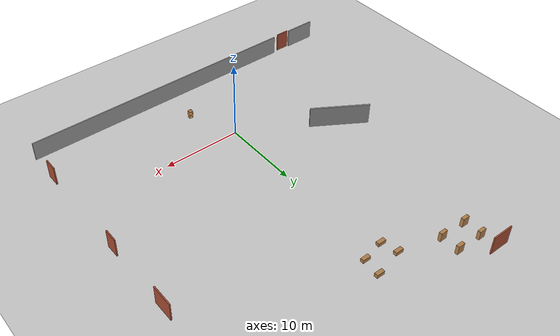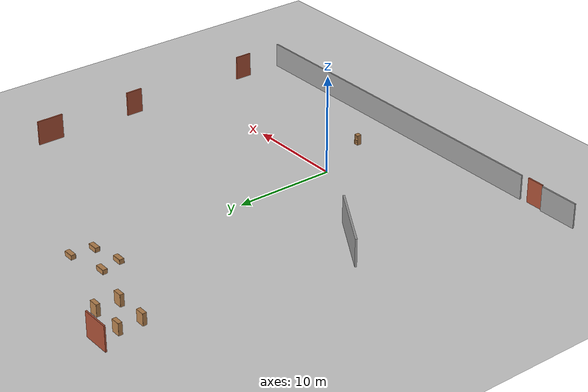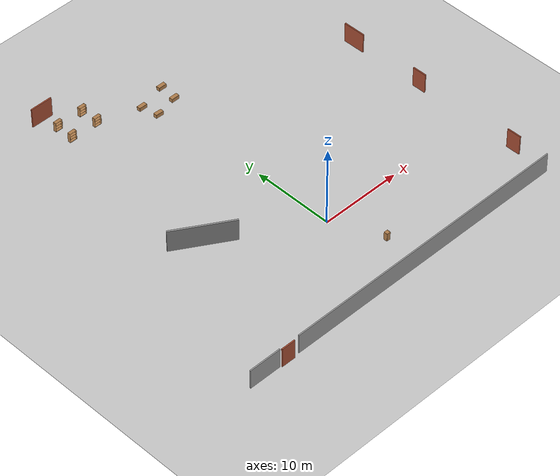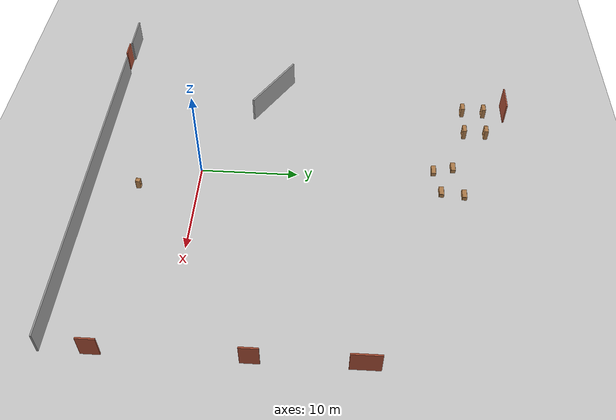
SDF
<sdf version="1.6">
 <world name="default">
  <light name="sun" type="directional">
   <pose>0 0 10 0 -0 0</pose>
   <diffuse>0.8 0.8 0.8 1</diffuse>
   <specular>0.1 0.1 0.1 1</specular>
   <attenuation>
    <range>1000</range>
    <constant>0.9</constant>
    <linear>0.01</linear>
    <quadratic>0.001</quadratic>
   </attenuation>
   <direction>-0.5 0.5 -1</direction>
  </light>
  <model name="ground_plane">
   <static>1</static>
   <link name="link">
    <collision name="collision">
     <geometry><plane><normal>0 0 1</normal><size>100 100</size></plane></geometry>
     <surface><friction><ode><mu>100</mu><mu2>50</mu2></ode></friction></surface>
    </collision>
    <visual name="visual">
     <cast_shadows>0</cast_shadows>
     <geometry><plane><normal>0 0 1</normal><size>100 100</size></plane></geometry>
     <material>
      <script><uri>file://media/materials/scripts/gazebo.material</uri><name>Gazebo/Grey</name></script>
     </material>
    </visual>
   </link>
  </model>
  <gravity>0 0 -9.8</gravity>
  <magnetic_field>6e-06 2.3e-05 -4.2e-05</magnetic_field>
  <atmosphere type="adiabatic"/>
  <physics name="default_physics" default="0" type="ode">
   <max_step_size>0.001</max_step_size>
   <real_time_factor>1</real_time_factor>
   <real_time_update_rate>1000</real_time_update_rate>
  </physics>
  <scene><ambient>0.4 0.4 0.4 1</ambient><background>0.7 0.7 0.7 1</background><shadows>1</shadows></scene>
  <spherical_coordinates>
   <surface_model>EARTH_WGS84</surface_model>
   <latitude_deg>0</latitude_deg>
   <longitude_deg>0</longitude_deg>
   <elevation>0</elevation>
   <heading_deg>0</heading_deg>
  </spherical_coordinates>
  <model name="willowblockwindow">
   <pose>0.08192 -10.749 0 0 -0 0</pose>
   <link name="Wall_13">
    <collision name="Wall_13_Collision">
     <geometry><box><size>36.5 0.15 2.5</size></box></geometry>
     <pose>0 0 1.25 0 -0 0</pose>
    </collision>
    <visual name="Wall_13_Visual">
     <pose>0 0 1.25 0 -0 0</pose>
     <geometry><box><size>36.5 0.15 2.5</size></box></geometry>
     <material>
      <script><uri>file://media/materials/scripts/gazebo.material</uri><name>Gazebo/Grey</name></script>
      <ambient>1 1 1 1</ambient>
     </material>
    </visual>
    <pose>3.29551 0 0 0 -0 0</pose>
   </link>
   <link name="Wall_9">
    <collision name="Wall_9_Collision">
     <geometry><box><size>4 0.15 2.5</size></box></geometry>
     <pose>0 0 1.25 0 -0 0</pose>
    </collision>
    <visual name="Wall_9_Visual">
     <pose>0 0 1.25 0 -0 0</pose>
     <geometry><box><size>4 0.15 2.5</size></box></geometry>
     <material>
      <script><uri>file://media/materials/scripts/gazebo.material</uri><name>Gazebo/Grey</name></script>
      <ambient>1 1 1 1</ambient>
     </material>
    </visual>
    <pose>-19.5455 0 0 0 -0 0</pose>
   </link>
   <static>1</static>
  </model>
  <model name="grey_wall">
   <static>1</static>
   <link name="link">
    <pose>0 0 1.4 0 -0 0</pose>
    <collision name="collision"><geometry><box><size>7.5 0.2 2.8</size></box></geometry></collision>
    <visual name="visual">
     <cast_shadows>0</cast_shadows>
     <geometry><box><size>7.5 0.2 2.8</size></box></geometry>
     <material>
      <script>
       <uri>model://grey_wall/materials/scripts</uri>
       <uri>model://grey_wall/materials/textures</uri>
       <name>vrc/grey_wall</name>
      </script>
     </material>
    </visual>
   </link>
   <pose>-11.2631 6.61663 0 0 -0 2.59196</pose>
  </model>
  <model name="exitblock">
   <pose>-16.4475 -10.9149 0 0 -0 0</pose>
   <link name="Wall_16">
    <collision name="Wall_16_Collision">
     <geometry><box><size>1.75 0.15 2.5</size></box></geometry>
     <pose>0 0 1.25 0 -0 0</pose>
    </collision>
    <visual name="Wall_16_Visual">
     <pose>0 0 1.25 0 -0 0</pose>
     <geometry><box><size>1.75 0.15 2.5</size></box></geometry>
     <material>
      <script><uri>file://media/materials/scripts/gazebo.material</uri><name>Gazebo/Bricks</name></script>
      <ambient>1 1 1 1</ambient>
     </material>
    </visual>
    <pose>0 0 0 0 -0 3.14159</pose>
   </link>
   <static>1</static>
  </model>
  <model name="exitblock_clone">
   <pose>-10.6028 32.0942 0 0 -0 0</pose>
   <link name="Wall_16">
    <collision name="Wall_16_Collision">
     <geometry><box><size>2.75 0.15 2.5</size></box></geometry>
     <pose>0 0 1.25 0 -0 0</pose>
    </collision>
    <visual name="Wall_16_Visual">
     <pose>0 0 1.25 0 -0 0</pose>
     <geometry><box><size>2.75 0.15 2.5</size></box></geometry>
     <material>
      <script><uri>file://media/materials/scripts/gazebo.material</uri><name>Gazebo/Bricks</name></script>
      <ambient>1 1 1 1</ambient>
     </material>
    </visual>
    <pose>0 0 0 0 -0 3.14159</pose>
   </link>
   <static>1</static>
  </model>
  <model name="exitblock_clone_0">
   <pose>21.5489 17.1329 0 0 -0 1.57666</pose>
   <link name="Wall_16">
    <collision name="Wall_16_Collision">
     <geometry><box><size>2.75 0.15 2.5</size></box></geometry>
     <pose>0 0 1.25 0 -0 0</pose>
    </collision>
    <visual name="Wall_16_Visual">
     <pose>0 0 1.25 0 -0 0</pose>
     <geometry><box><size>2.75 0.15 2.5</size></box></geometry>
     <material>
      <script><uri>file://media/materials/scripts/gazebo.material</uri><name>Gazebo/Bricks</name></script>
      <ambient>1 1 1 1</ambient>
     </material>
    </visual>
    <pose>0 0 0 0 -0 3.14159</pose>
   </link>
   <static>1</static>
  </model>
  <model name="exitblock_clone_0_clone">
   <pose>21.5675 7.4089 0 0 -0 1.57668</pose>
   <link name="Wall_16">
    <collision name="Wall_16_Collision">
     <geometry><box><size>1.75 0.15 2.5</size></box></geometry>
     <pose>0 0 1.25 0 -0 0</pose>
    </collision>
    <visual name="Wall_16_Visual">
     <pose>0 0 1.25 0 -0 0</pose>
     <geometry><box><size>1.75 0.15 2.5</size></box></geometry>
     <material>
      <script><uri>file://media/materials/scripts/gazebo.material</uri><name>Gazebo/Bricks</name></script>
      <ambient>1 1 1 1</ambient>
     </material>
    </visual>
    <pose>0 0 0 0 -0 3.14159</pose>
   </link>
   <static>1</static>
  </model>
  <model name="exitblock_clone_0_clone_0">
   <pose>21.5619 -6.19662 0 0 -0 1.57668</pose>
   <link name="Wall_16">
    <collision name="Wall_16_Collision">
     <geometry><box><size>1.75 0.15 2.5</size></box></geometry>
     <pose>0 0 1.25 0 -0 0</pose>
    </collision>
    <visual name="Wall_16_Visual">
     <pose>0 0 1.25 0 -0 0</pose>
     <geometry><box><size>1.75 0.15 2.5</size></box></geometry>
     <material>
      <script><uri>file://media/materials/scripts/gazebo.material</uri><name>Gazebo/Bricks</name></script>
      <ambient>1 1 1 1</ambient>
     </material>
    </visual>
    <pose>0 0 0 0 -0 3.14159</pose>
   </link>
   <static>1</static>
  </model>
  <model name="cabinet_0">
   <static>1</static>
   <link name="cabinet_bottom_plate">
    <inertial>
     <pose>0 0 -1 0 -0 0</pose>
     <inertia><ixx>2.05</ixx><ixy>0</ixy><ixz>0</ixz><iyy>2.05</iyy><iyz>0</iyz><izz>2.05</izz></inertia>
     <mass>25</mass>
    </inertial>
    <collision name="cabinet_bottom_plate_geom">
     <pose>0 0 0.01 0 -0 0</pose>
     <geometry><box><size>0.45 0.45 0.02</size></box></geometry>
    </collision>
    <visual name="cabinet_bottom_plate_geom_visual">
     <pose>0 0 0.01 0 -0 0</pose>
     <geometry><box><size>0.45 0.45 0.02</size></box></geometry>
     <material>
      <script><uri>file://media/materials/scripts/gazebo.material</uri><name>Gazebo/Wood</name></script>
     </material>
    </visual>
    <collision name="cabinet_bottom_plate_geom_cabinet_back_plate">
     <pose>0.235 0 0.51 0 -0 0</pose>
     <geometry><box><size>0.02 0.45 1.02</size></box></geometry>
    </collision>
    <visual name="cabinet_bottom_plate_geom_cabinet_back_plate_visual">
     <pose>0.235 0 0.51 0 -0 0</pose>
     <geometry><box><size>0.02 0.45 1.02</size></box></geometry>
     <material>
      <script><uri>file://media/materials/scripts/gazebo.material</uri><name>Gazebo/Wood</name></script>
     </material>
    </visual>
    <collision name="cabinet_bottom_plate_geom_cabinet_left_plate">
     <pose>0 0.235 0.51 0 -0 0</pose>
     <geometry><box><size>0.45 0.02 1.02</size></box></geometry>
    </collision>
    <visual name="cabinet_bottom_plate_geom_cabinet_left_plate_visual">
     <pose>0 0.235 0.51 0 -0 0</pose>
     <geometry><box><size>0.45 0.02 1.02</size></box></geometry>
     <material>
      <script><uri>file://media/materials/scripts/gazebo.material</uri><name>Gazebo/Wood</name></script>
     </material>
    </visual>
    <collision name="cabinet_bottom_plate_geom_cabinet_middle_plate">
     <pose>0 0 0.51 0 -0 0</pose>
     <geometry><box><size>0.45 0.45 0.02</size></box></geometry>
    </collision>
    <visual name="cabinet_bottom_plate_geom_cabinet_middle_plate_visual">
     <pose>0 0 0.51 0 -0 0</pose>
     <geometry><box><size>0.45 0.45 0.02</size></box></geometry>
     <material>
      <script><uri>file://media/materials/scripts/gazebo.material</uri><name>Gazebo/Wood</name></script>
     </material>
    </visual>
    <collision name="cabinet_bottom_plate_geom_cabinet_right_plate">
     <pose>0 -0.235 0.51 0 -0 0</pose>
     <geometry><box><size>0.45 0.02 1.02</size></box></geometry>
    </collision>
    <visual name="cabinet_bottom_plate_geom_cabinet_right_plate_visual">
     <pose>0 -0.235 0.51 0 -0 0</pose>
     <geometry><box><size>0.45 0.02 1.02</size></box></geometry>
     <material>
      <script><uri>file://media/materials/scripts/gazebo.material</uri><name>Gazebo/Wood</name></script>
     </material>
    </visual>
    <collision name="cabinet_bottom_plate_geom_cabinet_top_plate">
     <pose>0 0 1.01 0 -0 0</pose>
     <geometry><box><size>0.45 0.45 0.02</size></box></geometry>
    </collision>
    <visual name="cabinet_bottom_plate_geom_cabinet_top_plate_visual">
     <pose>0 0 1.01 0 -0 0</pose>
     <geometry><box><size>0.45 0.45 0.02</size></box></geometry>
     <material>
      <script><uri>file://media/materials/scripts/gazebo.material</uri><name>Gazebo/Wood</name></script>
     </material>
    </visual>
   </link>
   <pose>2.39514 26.9273 0.268128 3.14159 -1.56629 3.14159</pose>
  </model>
  <model name="cabinet_0_clone">
   <static>1</static>
   <link name="cabinet_bottom_plate">
    <inertial>
     <pose>0 0 -1 0 -0 0</pose>
     <inertia><ixx>2.05</ixx><ixy>0</ixy><ixz>0</ixz><iyy>2.05</iyy><iyz>0</iyz><izz>2.05</izz></inertia>
     <mass>25</mass>
    </inertial>
    <collision name="cabinet_bottom_plate_geom">
     <pose>0 0 0.01 0 -0 0</pose>
     <geometry><box><size>0.45 0.45 0.02</size></box></geometry>
    </collision>
    <visual name="cabinet_bottom_plate_geom_visual">
     <pose>0 0 0.01 0 -0 0</pose>
     <geometry><box><size>0.45 0.45 0.02</size></box></geometry>
     <material>
      <script><uri>file://media/materials/scripts/gazebo.material</uri><name>Gazebo/Wood</name></script>
     </material>
    </visual>
    <collision name="cabinet_bottom_plate_geom_cabinet_back_plate">
     <pose>0.235 0 0.51 0 -0 0</pose>
     <geometry><box><size>0.02 0.45 1.02</size></box></geometry>
    </collision>
    <visual name="cabinet_bottom_plate_geom_cabinet_back_plate_visual">
     <pose>0.235 0 0.51 0 -0 0</pose>
     <geometry><box><size>0.02 0.45 1.02</size></box></geometry>
     <material>
      <script><uri>file://media/materials/scripts/gazebo.material</uri><name>Gazebo/Wood</name></script>
     </material>
    </visual>
    <collision name="cabinet_bottom_plate_geom_cabinet_left_plate">
     <pose>0 0.235 0.51 0 -0 0</pose>
     <geometry><box><size>0.45 0.02 1.02</size></box></geometry>
    </collision>
    <visual name="cabinet_bottom_plate_geom_cabinet_left_plate_visual">
     <pose>0 0.235 0.51 0 -0 0</pose>
     <geometry><box><size>0.45 0.02 1.02</size></box></geometry>
     <material>
      <script><uri>file://media/materials/scripts/gazebo.material</uri><name>Gazebo/Wood</name></script>
     </material>
    </visual>
    <collision name="cabinet_bottom_plate_geom_cabinet_middle_plate">
     <pose>0 0 0.51 0 -0 0</pose>
     <geometry><box><size>0.45 0.45 0.02</size></box></geometry>
    </collision>
    <visual name="cabinet_bottom_plate_geom_cabinet_middle_plate_visual">
     <pose>0 0 0.51 0 -0 0</pose>
     <geometry><box><size>0.45 0.45 0.02</size></box></geometry>
     <material>
      <script><uri>file://media/materials/scripts/gazebo.material</uri><name>Gazebo/Wood</name></script>
     </material>
    </visual>
    <collision name="cabinet_bottom_plate_geom_cabinet_right_plate">
     <pose>0 -0.235 0.51 0 -0 0</pose>
     <geometry><box><size>0.45 0.02 1.02</size></box></geometry>
    </collision>
    <visual name="cabinet_bottom_plate_geom_cabinet_right_plate_visual">
     <pose>0 -0.235 0.51 0 -0 0</pose>
     <geometry><box><size>0.45 0.02 1.02</size></box></geometry>
     <material>
      <script><uri>file://media/materials/scripts/gazebo.material</uri><name>Gazebo/Wood</name></script>
     </material>
    </visual>
    <collision name="cabinet_bottom_plate_geom_cabinet_top_plate">
     <pose>0 0 1.01 0 -0 0</pose>
     <geometry><box><size>0.45 0.45 0.02</size></box></geometry>
    </collision>
    <visual name="cabinet_bottom_plate_geom_cabinet_top_plate_visual">
     <pose>0 0 1.01 0 -0 0</pose>
     <geometry><box><size>0.45 0.45 0.02</size></box></geometry>
     <material>
      <script><uri>file://media/materials/scripts/gazebo.material</uri><name>Gazebo/Wood</name></script>
     </material>
    </visual>
   </link>
   <pose>-1.75634 24.0222 0.251908 3.14159 -1.54682 -0.020193</pose>
  </model>
  <model name="cabinet_1">
   <static>1</static>
   <link name="cabinet_bottom_plate">
    <inertial>
     <pose>0 0 -1 0 -0 0</pose>
     <inertia><ixx>2.05</ixx><ixy>0</ixy><ixz>0</ixz><iyy>2.05</iyy><iyz>0</iyz><izz>2.05</izz></inertia>
     <mass>25</mass>
    </inertial>
    <collision name="cabinet_bottom_plate_geom">
     <pose>0 0 0.01 0 -0 0</pose>
     <geometry><box><size>0.45 0.45 0.02</size></box></geometry>
    </collision>
    <visual name="cabinet_bottom_plate_geom_visual">
     <pose>0 0 0.01 0 -0 0</pose>
     <geometry><box><size>0.45 0.45 0.02</size></box></geometry>
     <material>
      <script><uri>file://media/materials/scripts/gazebo.material</uri><name>Gazebo/Wood</name></script>
     </material>
    </visual>
    <collision name="cabinet_bottom_plate_geom_cabinet_back_plate">
     <pose>0.235 0 0.51 0 -0 0</pose>
     <geometry><box><size>0.02 0.45 1.02</size></box></geometry>
    </collision>
    <visual name="cabinet_bottom_plate_geom_cabinet_back_plate_visual">
     <pose>0.235 0 0.51 0 -0 0</pose>
     <geometry><box><size>0.02 0.45 1.02</size></box></geometry>
     <material>
      <script><uri>file://media/materials/scripts/gazebo.material</uri><name>Gazebo/Wood</name></script>
     </material>
    </visual>
    <collision name="cabinet_bottom_plate_geom_cabinet_left_plate">
     <pose>0 0.235 0.51 0 -0 0</pose>
     <geometry><box><size>0.45 0.02 1.02</size></box></geometry>
    </collision>
    <visual name="cabinet_bottom_plate_geom_cabinet_left_plate_visual">
     <pose>0 0.235 0.51 0 -0 0</pose>
     <geometry><box><size>0.45 0.02 1.02</size></box></geometry>
     <material>
      <script><uri>file://media/materials/scripts/gazebo.material</uri><name>Gazebo/Wood</name></script>
     </material>
    </visual>
    <collision name="cabinet_bottom_plate_geom_cabinet_middle_plate">
     <pose>0 0 0.51 0 -0 0</pose>
     <geometry><box><size>0.45 0.45 0.02</size></box></geometry>
    </collision>
    <visual name="cabinet_bottom_plate_geom_cabinet_middle_plate_visual">
     <pose>0 0 0.51 0 -0 0</pose>
     <geometry><box><size>0.45 0.45 0.02</size></box></geometry>
     <material>
      <script><uri>file://media/materials/scripts/gazebo.material</uri><name>Gazebo/Wood</name></script>
     </material>
    </visual>
    <collision name="cabinet_bottom_plate_geom_cabinet_right_plate">
     <pose>0 -0.235 0.51 0 -0 0</pose>
     <geometry><box><size>0.45 0.02 1.02</size></box></geometry>
    </collision>
    <visual name="cabinet_bottom_plate_geom_cabinet_right_plate_visual">
     <pose>0 -0.235 0.51 0 -0 0</pose>
     <geometry><box><size>0.45 0.02 1.02</size></box></geometry>
     <material>
      <script><uri>file://media/materials/scripts/gazebo.material</uri><name>Gazebo/Wood</name></script>
     </material>
    </visual>
    <collision name="cabinet_bottom_plate_geom_cabinet_top_plate">
     <pose>0 0 1.01 0 -0 0</pose>
     <geometry><box><size>0.45 0.45 0.02</size></box></geometry>
    </collision>
    <visual name="cabinet_bottom_plate_geom_cabinet_top_plate_visual">
     <pose>0 0 1.01 0 -0 0</pose>
     <geometry><box><size>0.45 0.45 0.02</size></box></geometry>
     <material>
      <script><uri>file://media/materials/scripts/gazebo.material</uri><name>Gazebo/Wood</name></script>
     </material>
    </visual>
   </link>
   <pose>2.60706 -5.99347 0 0 0 -1.59776</pose>
  </model>
  <model name="cabinet_0_clone_0">
   <static>1</static>
   <link name="cabinet_bottom_plate">
    <inertial>
     <pose>0 0 -1 0 -0 0</pose>
     <inertia><ixx>2.05</ixx><ixy>0</ixy><ixz>0</ixz><iyy>2.05</iyy><iyz>0</iyz><izz>2.05</izz></inertia>
     <mass>25</mass>
    </inertial>
    <collision name="cabinet_bottom_plate_geom">
     <pose>0 0 0.01 0 -0 0</pose>
     <geometry><box><size>0.45 0.45 0.02</size></box></geometry>
    </collision>
    <visual name="cabinet_bottom_plate_geom_visual">
     <pose>0 0 0.01 0 -0 0</pose>
     <geometry><box><size>0.45 0.45 0.02</size></box></geometry>
     <material>
      <script><uri>file://media/materials/scripts/gazebo.material</uri><name>Gazebo/Wood</name></script>
     </material>
    </visual>
    <collision name="cabinet_bottom_plate_geom_cabinet_back_plate">
     <pose>0.235 0 0.51 0 -0 0</pose>
     <geometry><box><size>0.02 0.45 1.02</size></box></geometry>
    </collision>
    <visual name="cabinet_bottom_plate_geom_cabinet_back_plate_visual">
     <pose>0.235 0 0.51 0 -0 0</pose>
     <geometry><box><size>0.02 0.45 1.02</size></box></geometry>
     <material>
      <script><uri>file://media/materials/scripts/gazebo.material</uri><name>Gazebo/Wood</name></script>
     </material>
    </visual>
    <collision name="cabinet_bottom_plate_geom_cabinet_left_plate">
     <pose>0 0.235 0.51 0 -0 0</pose>
     <geometry><box><size>0.45 0.02 1.02</size></box></geometry>
    </collision>
    <visual name="cabinet_bottom_plate_geom_cabinet_left_plate_visual">
     <pose>0 0.235 0.51 0 -0 0</pose>
     <geometry><box><size>0.45 0.02 1.02</size></box></geometry>
     <material>
      <script><uri>file://media/materials/scripts/gazebo.material</uri><name>Gazebo/Wood</name></script>
     </material>
    </visual>
    <collision name="cabinet_bottom_plate_geom_cabinet_middle_plate">
     <pose>0 0 0.51 0 -0 0</pose>
     <geometry><box><size>0.45 0.45 0.02</size></box></geometry>
    </collision>
    <visual name="cabinet_bottom_plate_geom_cabinet_middle_plate_visual">
     <pose>0 0 0.51 0 -0 0</pose>
     <geometry><box><size>0.45 0.45 0.02</size></box></geometry>
     <material>
      <script><uri>file://media/materials/scripts/gazebo.material</uri><name>Gazebo/Wood</name></script>
     </material>
    </visual>
    <collision name="cabinet_bottom_plate_geom_cabinet_right_plate">
     <pose>0 -0.235 0.51 0 -0 0</pose>
     <geometry><box><size>0.45 0.02 1.02</size></box></geometry>
    </collision>
    <visual name="cabinet_bottom_plate_geom_cabinet_right_plate_visual">
     <pose>0 -0.235 0.51 0 -0 0</pose>
     <geometry><box><size>0.45 0.02 1.02</size></box></geometry>
     <material>
      <script><uri>file://media/materials/scripts/gazebo.material</uri><name>Gazebo/Wood</name></script>
     </material>
    </visual>
    <collision name="cabinet_bottom_plate_geom_cabinet_top_plate">
     <pose>0 0 1.01 0 -0 0</pose>
     <geometry><box><size>0.45 0.45 0.02</size></box></geometry>
    </collision>
    <visual name="cabinet_bottom_plate_geom_cabinet_top_plate_visual">
     <pose>0 0 1.01 0 -0 0</pose>
     <geometry><box><size>0.45 0.45 0.02</size></box></geometry>
     <material>
      <script><uri>file://media/materials/scripts/gazebo.material</uri><name>Gazebo/Wood</name></script>
     </material>
    </visual>
   </link>
   <pose>-1.26873 26.0381 0.268128 3.14159 -1.56629 3.14159</pose>
  </model>
  <model name="cabinet_0_clone_1">
   <static>1</static>
   <link name="cabinet_bottom_plate">
    <inertial>
     <pose>0 0 -1 0 -0 0</pose>
     <inertia><ixx>2.05</ixx><ixy>0</ixy><ixz>0</ixz><iyy>2.05</iyy><iyz>0</iyz><izz>2.05</izz></inertia>
     <mass>25</mass>
    </inertial>
    <collision name="cabinet_bottom_plate_geom">
     <pose>0 0 0.01 0 -0 0</pose>
     <geometry><box><size>0.45 0.45 0.02</size></box></geometry>
    </collision>
    <visual name="cabinet_bottom_plate_geom_visual">
     <pose>0 0 0.01 0 -0 0</pose>
     <geometry><box><size>0.45 0.45 0.02</size></box></geometry>
     <material>
      <script><uri>file://media/materials/scripts/gazebo.material</uri><name>Gazebo/Wood</name></script>
     </material>
    </visual>
    <collision name="cabinet_bottom_plate_geom_cabinet_back_plate">
     <pose>0.235 0 0.51 0 -0 0</pose>
     <geometry><box><size>0.02 0.45 1.02</size></box></geometry>
    </collision>
    <visual name="cabinet_bottom_plate_geom_cabinet_back_plate_visual">
     <pose>0.235 0 0.51 0 -0 0</pose>
     <geometry><box><size>0.02 0.45 1.02</size></box></geometry>
     <material>
      <script><uri>file://media/materials/scripts/gazebo.material</uri><name>Gazebo/Wood</name></script>
     </material>
    </visual>
    <collision name="cabinet_bottom_plate_geom_cabinet_left_plate">
     <pose>0 0.235 0.51 0 -0 0</pose>
     <geometry><box><size>0.45 0.02 1.02</size></box></geometry>
    </collision>
    <visual name="cabinet_bottom_plate_geom_cabinet_left_plate_visual">
     <pose>0 0.235 0.51 0 -0 0</pose>
     <geometry><box><size>0.45 0.02 1.02</size></box></geometry>
     <material>
      <script><uri>file://media/materials/scripts/gazebo.material</uri><name>Gazebo/Wood</name></script>
     </material>
    </visual>
    <collision name="cabinet_bottom_plate_geom_cabinet_middle_plate">
     <pose>0 0 0.51 0 -0 0</pose>
     <geometry><box><size>0.45 0.45 0.02</size></box></geometry>
    </collision>
    <visual name="cabinet_bottom_plate_geom_cabinet_middle_plate_visual">
     <pose>0 0 0.51 0 -0 0</pose>
     <geometry><box><size>0.45 0.45 0.02</size></box></geometry>
     <material>
      <script><uri>file://media/materials/scripts/gazebo.material</uri><name>Gazebo/Wood</name></script>
     </material>
    </visual>
    <collision name="cabinet_bottom_plate_geom_cabinet_right_plate">
     <pose>0 -0.235 0.51 0 -0 0</pose>
     <geometry><box><size>0.45 0.02 1.02</size></box></geometry>
    </collision>
    <visual name="cabinet_bottom_plate_geom_cabinet_right_plate_visual">
     <pose>0 -0.235 0.51 0 -0 0</pose>
     <geometry><box><size>0.45 0.02 1.02</size></box></geometry>
     <material>
      <script><uri>file://media/materials/scripts/gazebo.material</uri><name>Gazebo/Wood</name></script>
     </material>
    </visual>
    <collision name="cabinet_bottom_plate_geom_cabinet_top_plate">
     <pose>0 0 1.01 0 -0 0</pose>
     <geometry><box><size>0.45 0.45 0.02</size></box></geometry>
    </collision>
    <visual name="cabinet_bottom_plate_geom_cabinet_top_plate_visual">
     <pose>0 0 1.01 0 -0 0</pose>
     <geometry><box><size>0.45 0.45 0.02</size></box></geometry>
     <material>
      <script><uri>file://media/materials/scripts/gazebo.material</uri><name>Gazebo/Wood</name></script>
     </material>
    </visual>
   </link>
   <pose>2.1477 24.6482 0.268128 3.14159 -1.56629 3.14159</pose>
  </model>
  <model name="bookshelf_0">
   <static>1</static>
   <link name="link">
    <inertial><mass>1</mass></inertial>
    <collision name="back">
     <pose>0 0.005 0.6 0 -0 0</pose>
     <geometry><box><size>0.9 0.01 1.2</size></box></geometry>
    </collision>
    <visual name="visual1">
     <pose>0 0.005 0.6 0 -0 0</pose>
     <geometry><box><size>0.9 0.01 1.2</size></box></geometry>
     <material>
      <script><uri>file://media/materials/scripts/gazebo.material</uri><name>Gazebo/Wood</name></script>
     </material>
    </visual>
    <collision name="left_side">
     <pose>0.45 -0.195 0.6 0 -0 0</pose>
     <geometry><box><size>0.02 0.4 1.2</size></box></geometry>
    </collision>
    <visual name="visual2">
     <pose>0.45 -0.195 0.6 0 -0 0</pose>
     <geometry><box><size>0.02 0.4 1.2</size></box></geometry>
     <material>
      <script><uri>file://media/materials/scripts/gazebo.material</uri><name>Gazebo/Wood</name></script>
     </material>
    </visual>
    <collision name="right_side">
     <pose>-0.45 -0.195 0.6 0 -0 0</pose>
     <geometry><box><size>0.02 0.4 1.2</size></box></geometry>
    </collision>
    <visual name="visual3">
     <pose>-0.45 -0.195 0.6 0 -0 0</pose>
     <geometry><box><size>0.02 0.4 1.2</size></box></geometry>
     <material>
      <script><uri>file://media/materials/scripts/gazebo.material</uri><name>Gazebo/Wood</name></script>
     </material>
    </visual>
    <collision name="bottom">
     <pose>0 -0.195 0.03 0 -0 0</pose>
     <geometry><box><size>0.88 0.4 0.06</size></box></geometry>
    </collision>
    <visual name="visual4">
     <pose>0 -0.195 0.03 0 -0 0</pose>
     <geometry><box><size>0.88 0.4 0.06</size></box></geometry>
     <material>
      <script><uri>file://media/materials/scripts/gazebo.material</uri><name>Gazebo/Wood</name></script>
     </material>
    </visual>
    <collision name="top">
     <pose>0 -0.195 1.19 0 -0 0</pose>
     <geometry><box><size>0.88 0.4 0.02</size></box></geometry>
    </collision>
    <visual name="visual5">
     <pose>0 -0.195 1.19 0 -0 0</pose>
     <geometry><box><size>0.88 0.4 0.02</size></box></geometry>
     <material>
      <script><uri>file://media/materials/scripts/gazebo.material</uri><name>Gazebo/Wood</name></script>
     </material>
    </visual>
    <collision name="low_shelf">
     <pose>0 -0.195 0.43 0 -0 0</pose>
     <geometry><box><size>0.88 0.4 0.02</size></box></geometry>
    </collision>
    <visual name="visual6">
     <pose>0 -0.195 0.43 0 -0 0</pose>
     <geometry><box><size>0.88 0.4 0.02</size></box></geometry>
     <material>
      <script><uri>file://media/materials/scripts/gazebo.material</uri><name>Gazebo/Wood</name></script>
     </material>
    </visual>
    <collision name="high_shelf">
     <pose>0 -0.195 0.8 0 -0 0</pose>
     <geometry><box><size>0.88 0.4 0.02</size></box></geometry>
    </collision>
    <visual name="visual7">
     <pose>0 -0.195 0.8 0 -0 0</pose>
     <geometry><box><size>0.88 0.4 0.02</size></box></geometry>
     <material>
      <script><uri>file://media/materials/scripts/gazebo.material</uri><name>Gazebo/Wood</name></script>
     </material>
    </visual>
   </link>
   <pose>-10.2681 30.1178 0 0 -0 0</pose>
  </model>
  <model name="bookshelf_1">
   <static>1</static>
   <link name="link">
    <inertial><mass>1</mass></inertial>
    <collision name="back">
     <pose>0 0.005 0.6 0 -0 0</pose>
     <geometry><box><size>0.9 0.01 1.2</size></box></geometry>
    </collision>
    <visual name="visual1">
     <pose>0 0.005 0.6 0 -0 0</pose>
     <geometry><box><size>0.9 0.01 1.2</size></box></geometry>
     <material>
      <script><uri>file://media/materials/scripts/gazebo.material</uri><name>Gazebo/Wood</name></script>
     </material>
    </visual>
    <collision name="left_side">
     <pose>0.45 -0.195 0.6 0 -0 0</pose>
     <geometry><box><size>0.02 0.4 1.2</size></box></geometry>
    </collision>
    <visual name="visual2">
     <pose>0.45 -0.195 0.6 0 -0 0</pose>
     <geometry><box><size>0.02 0.4 1.2</size></box></geometry>
     <material>
      <script><uri>file://media/materials/scripts/gazebo.material</uri><name>Gazebo/Wood</name></script>
     </material>
    </visual>
    <collision name="right_side">
     <pose>-0.45 -0.195 0.6 0 -0 0</pose>
     <geometry><box><size>0.02 0.4 1.2</size></box></geometry>
    </collision>
    <visual name="visual3">
     <pose>-0.45 -0.195 0.6 0 -0 0</pose>
     <geometry><box><size>0.02 0.4 1.2</size></box></geometry>
     <material>
      <script><uri>file://media/materials/scripts/gazebo.material</uri><name>Gazebo/Wood</name></script>
     </material>
    </visual>
    <collision name="bottom">
     <pose>0 -0.195 0.03 0 -0 0</pose>
     <geometry><box><size>0.88 0.4 0.06</size></box></geometry>
    </collision>
    <visual name="visual4">
     <pose>0 -0.195 0.03 0 -0 0</pose>
     <geometry><box><size>0.88 0.4 0.06</size></box></geometry>
     <material>
      <script><uri>file://media/materials/scripts/gazebo.material</uri><name>Gazebo/Wood</name></script>
     </material>
    </visual>
    <collision name="top">
     <pose>0 -0.195 1.19 0 -0 0</pose>
     <geometry><box><size>0.88 0.4 0.02</size></box></geometry>
    </collision>
    <visual name="visual5">
     <pose>0 -0.195 1.19 0 -0 0</pose>
     <geometry><box><size>0.88 0.4 0.02</size></box></geometry>
     <material>
      <script><uri>file://media/materials/scripts/gazebo.material</uri><name>Gazebo/Wood</name></script>
     </material>
    </visual>
    <collision name="low_shelf">
     <pose>0 -0.195 0.43 0 -0 0</pose>
     <geometry><box><size>0.88 0.4 0.02</size></box></geometry>
    </collision>
    <visual name="visual6">
     <pose>0 -0.195 0.43 0 -0 0</pose>
     <geometry><box><size>0.88 0.4 0.02</size></box></geometry>
     <material>
      <script><uri>file://media/materials/scripts/gazebo.material</uri><name>Gazebo/Wood</name></script>
     </material>
    </visual>
    <collision name="high_shelf">
     <pose>0 -0.195 0.8 0 -0 0</pose>
     <geometry><box><size>0.88 0.4 0.02</size></box></geometry>
    </collision>
    <visual name="visual7">
     <pose>0 -0.195 0.8 0 -0 0</pose>
     <geometry><box><size>0.88 0.4 0.02</size></box></geometry>
     <material>
      <script><uri>file://media/materials/scripts/gazebo.material</uri><name>Gazebo/Wood</name></script>
     </material>
    </visual>
   </link>
   <pose>-6.90174 30.0725 0 0 -0 0</pose>
  </model>
  <model name="bookshelf_2">
   <static>1</static>
   <link name="link">
    <inertial><mass>1</mass></inertial>
    <collision name="back">
     <pose>0 0.005 0.6 0 -0 0</pose>
     <geometry><box><size>0.9 0.01 1.2</size></box></geometry>
    </collision>
    <visual name="visual1">
     <pose>0 0.005 0.6 0 -0 0</pose>
     <geometry><box><size>0.9 0.01 1.2</size></box></geometry>
     <material>
      <script><uri>file://media/materials/scripts/gazebo.material</uri><name>Gazebo/Wood</name></script>
     </material>
    </visual>
    <collision name="left_side">
     <pose>0.45 -0.195 0.6 0 -0 0</pose>
     <geometry><box><size>0.02 0.4 1.2</size></box></geometry>
    </collision>
    <visual name="visual2">
     <pose>0.45 -0.195 0.6 0 -0 0</pose>
     <geometry><box><size>0.02 0.4 1.2</size></box></geometry>
     <material>
      <script><uri>file://media/materials/scripts/gazebo.material</uri><name>Gazebo/Wood</name></script>
     </material>
    </visual>
    <collision name="right_side">
     <pose>-0.45 -0.195 0.6 0 -0 0</pose>
     <geometry><box><size>0.02 0.4 1.2</size></box></geometry>
    </collision>
    <visual name="visual3">
     <pose>-0.45 -0.195 0.6 0 -0 0</pose>
     <geometry><box><size>0.02 0.4 1.2</size></box></geometry>
     <material>
      <script><uri>file://media/materials/scripts/gazebo.material</uri><name>Gazebo/Wood</name></script>
     </material>
    </visual>
    <collision name="bottom">
     <pose>0 -0.195 0.03 0 -0 0</pose>
     <geometry><box><size>0.88 0.4 0.06</size></box></geometry>
    </collision>
    <visual name="visual4">
     <pose>0 -0.195 0.03 0 -0 0</pose>
     <geometry><box><size>0.88 0.4 0.06</size></box></geometry>
     <material>
      <script><uri>file://media/materials/scripts/gazebo.material</uri><name>Gazebo/Wood</name></script>
     </material>
    </visual>
    <collision name="top">
     <pose>0 -0.195 1.19 0 -0 0</pose>
     <geometry><box><size>0.88 0.4 0.02</size></box></geometry>
    </collision>
    <visual name="visual5">
     <pose>0 -0.195 1.19 0 -0 0</pose>
     <geometry><box><size>0.88 0.4 0.02</size></box></geometry>
     <material>
      <script><uri>file://media/materials/scripts/gazebo.material</uri><name>Gazebo/Wood</name></script>
     </material>
    </visual>
    <collision name="low_shelf">
     <pose>0 -0.195 0.43 0 -0 0</pose>
     <geometry><box><size>0.88 0.4 0.02</size></box></geometry>
    </collision>
    <visual name="visual6">
     <pose>0 -0.195 0.43 0 -0 0</pose>
     <geometry><box><size>0.88 0.4 0.02</size></box></geometry>
     <material>
      <script><uri>file://media/materials/scripts/gazebo.material</uri><name>Gazebo/Wood</name></script>
     </material>
    </visual>
    <collision name="high_shelf">
     <pose>0 -0.195 0.8 0 -0 0</pose>
     <geometry><box><size>0.88 0.4 0.02</size></box></geometry>
    </collision>
    <visual name="visual7">
     <pose>0 -0.195 0.8 0 -0 0</pose>
     <geometry><box><size>0.88 0.4 0.02</size></box></geometry>
     <material>
      <script><uri>file://media/materials/scripts/gazebo.material</uri><name>Gazebo/Wood</name></script>
     </material>
    </visual>
   </link>
   <pose>-10.3011 27.8162 0 0 -0 0</pose>
  </model>
  <model name="bookshelf_3">
   <static>1</static>
   <link name="link">
    <inertial><mass>1</mass></inertial>
    <collision name="back">
     <pose>0 0.005 0.6 0 -0 0</pose>
     <geometry><box><size>0.9 0.01 1.2</size></box></geometry>
    </collision>
    <visual name="visual1">
     <pose>0 0.005 0.6 0 -0 0</pose>
     <geometry><box><size>0.9 0.01 1.2</size></box></geometry>
     <material>
      <script><uri>file://media/materials/scripts/gazebo.material</uri><name>Gazebo/Wood</name></script>
     </material>
    </visual>
    <collision name="left_side">
     <pose>0.45 -0.195 0.6 0 -0 0</pose>
     <geometry><box><size>0.02 0.4 1.2</size></box></geometry>
    </collision>
    <visual name="visual2">
     <pose>0.45 -0.195 0.6 0 -0 0</pose>
     <geometry><box><size>0.02 0.4 1.2</size></box></geometry>
     <material>
      <script><uri>file://media/materials/scripts/gazebo.material</uri><name>Gazebo/Wood</name></script>
     </material>
    </visual>
    <collision name="right_side">
     <pose>-0.45 -0.195 0.6 0 -0 0</pose>
     <geometry><box><size>0.02 0.4 1.2</size></box></geometry>
    </collision>
    <visual name="visual3">
     <pose>-0.45 -0.195 0.6 0 -0 0</pose>
     <geometry><box><size>0.02 0.4 1.2</size></box></geometry>
     <material>
      <script><uri>file://media/materials/scripts/gazebo.material</uri><name>Gazebo/Wood</name></script>
     </material>
    </visual>
    <collision name="bottom">
     <pose>0 -0.195 0.03 0 -0 0</pose>
     <geometry><box><size>0.88 0.4 0.06</size></box></geometry>
    </collision>
    <visual name="visual4">
     <pose>0 -0.195 0.03 0 -0 0</pose>
     <geometry><box><size>0.88 0.4 0.06</size></box></geometry>
     <material>
      <script><uri>file://media/materials/scripts/gazebo.material</uri><name>Gazebo/Wood</name></script>
     </material>
    </visual>
    <collision name="top">
     <pose>0 -0.195 1.19 0 -0 0</pose>
     <geometry><box><size>0.88 0.4 0.02</size></box></geometry>
    </collision>
    <visual name="visual5">
     <pose>0 -0.195 1.19 0 -0 0</pose>
     <geometry><box><size>0.88 0.4 0.02</size></box></geometry>
     <material>
      <script><uri>file://media/materials/scripts/gazebo.material</uri><name>Gazebo/Wood</name></script>
     </material>
    </visual>
    <collision name="low_shelf">
     <pose>0 -0.195 0.43 0 -0 0</pose>
     <geometry><box><size>0.88 0.4 0.02</size></box></geometry>
    </collision>
    <visual name="visual6">
     <pose>0 -0.195 0.43 0 -0 0</pose>
     <geometry><box><size>0.88 0.4 0.02</size></box></geometry>
     <material>
      <script><uri>file://media/materials/scripts/gazebo.material</uri><name>Gazebo/Wood</name></script>
     </material>
    </visual>
    <collision name="high_shelf">
     <pose>0 -0.195 0.8 0 -0 0</pose>
     <geometry><box><size>0.88 0.4 0.02</size></box></geometry>
    </collision>
    <visual name="visual7">
     <pose>0 -0.195 0.8 0 -0 0</pose>
     <geometry><box><size>0.88 0.4 0.02</size></box></geometry>
     <material>
      <script><uri>file://media/materials/scripts/gazebo.material</uri><name>Gazebo/Wood</name></script>
     </material>
    </visual>
   </link>
   <pose>-6.86002 27.7513 0 0 -0 0</pose>
  </model>
 </world>
</sdf>
